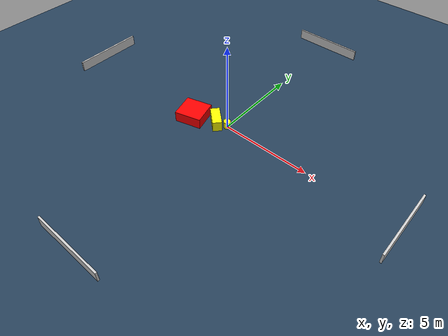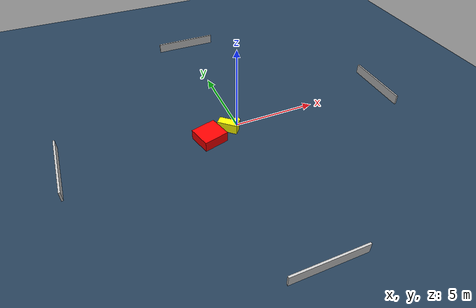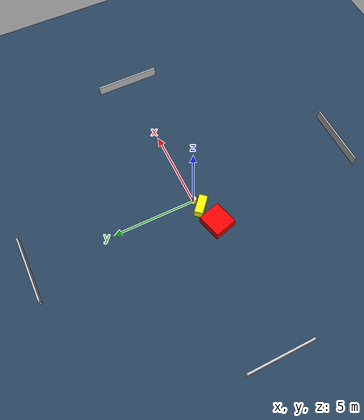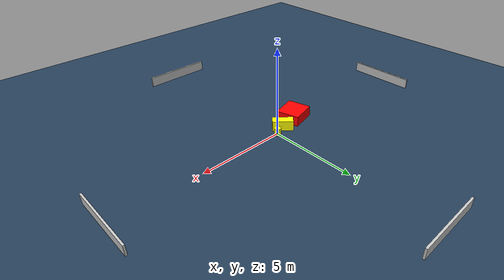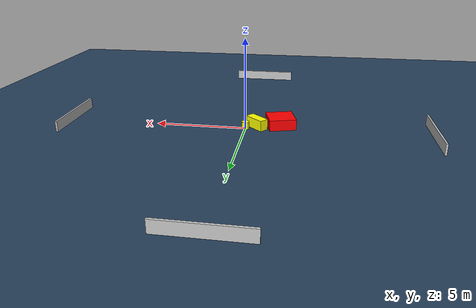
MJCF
<?xml version="1.0" ?>
<mujoco model="generated_environment">
  <option timestep="0.01" integrator="RK4" cone="elliptic"/>
  <default>
    <geom density="1"/>
  </default>
  <asset>
    <texture builtin="gradient" height="3072" name="skybox" rgb1="0.3 0.5 0.7" rgb2="0 0 0" type="skybox" width="512"/>
    <texture builtin="checker" height="300" name="groundplane" rgb1="0.2 0.3 0.4" rgb2="0.1 0.2 0.3" type="2d" width="300"/>
    <material name="groundplane" reflectance="0.2" texrepeat="5 5" texture="groundplane"/>
  </asset>
  <worldbody>
    <light dir="0 0 -1" directional="true" pos="0 0 1.5"/>
    <geom condim="3" friction="0.5 0.005 0.001" material="groundplane" name="floor" pos="0 0 0" size="0 0 0.05" type="plane"/>
    <body name="walls">
      <geom name="wall_1" condim="4" pos="-10.0 0.0 0.3" rgba="0.800000011920929 0.800000011920929 0.800000011920929 1.0" size="0.05 2.0 0.3" type="box"/>
      <geom name="wall_2" condim="4" pos="10.0 0.0 0.3" rgba="0.800000011920929 0.800000011920929 0.800000011920929 1.0" size="0.05 2.0 0.3" type="box"/>
      <geom name="wall_3" condim="4" pos="0.0 -10.0 0.3" rgba="0.800000011920929 0.800000011920929 0.800000011920929 1.0" size="2.0 0.05 0.3" type="box"/>
      <geom name="wall_4" condim="4" pos="0.0 10.0 0.3" rgba="0.800000011920929 0.800000011920929 0.800000011920929 1.0" size="2.0 0.05 0.3" type="box"/>
    </body>
    <body name="robot">
      <joint name="joint_x" type="slide" pos="0 0 0" axis="1 0 0"/>
      <joint name="joint_y" type="slide" pos="0 0 0" axis="0 1 0"/>
      <geom name="robot" type="cylinder" pos="0.0 0.0 0.2" size="0.2 0.2 0.0" mass="5.0" friction="1.0 0.005 0.0001" condim="4" rgba="1.0 1.0 0.0 1.0"/>
    </body>
    <body name="obstacle_1_movable">
      <geom name="obstacle_1_movable" condim="4" pos="-0.6069279768230705 -0.20467923955396009 0.3" euler="0 0 318.58200622792185" friction="0.0 0.005 0.001" rgba="1.0 1.0 0.0 1.0" size="0.5868283360179387 0.2527627816665636 0.3" type="box" mass="0.1"/>
      <joint type="free"/>
    </body>
    <body name="obstacle_2_static">
      <geom name="obstacle_2_static" condim="4" pos="-1.8914809136875548 -0.6030024195554787 0.3" euler="0 0 285.231280686696" friction="0.0 0.005 0.001" rgba="1.0 0.0 0.0 1.0" size="0.6876991897653821 0.7391420204768577 0.3" type="box"/>
    </body>
  </worldbody>
  <actuator>
    <motor name="actuator_x" joint="joint_x" gear="1" ctrlrange="-1 1"/>
    <motor name="actuator_y" joint="joint_y" gear="1" ctrlrange="-1 1"/>
  </actuator>
</mujoco>
